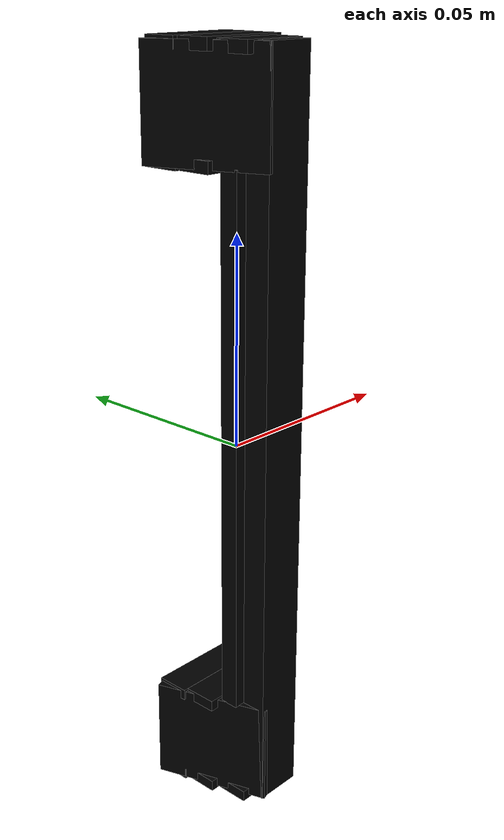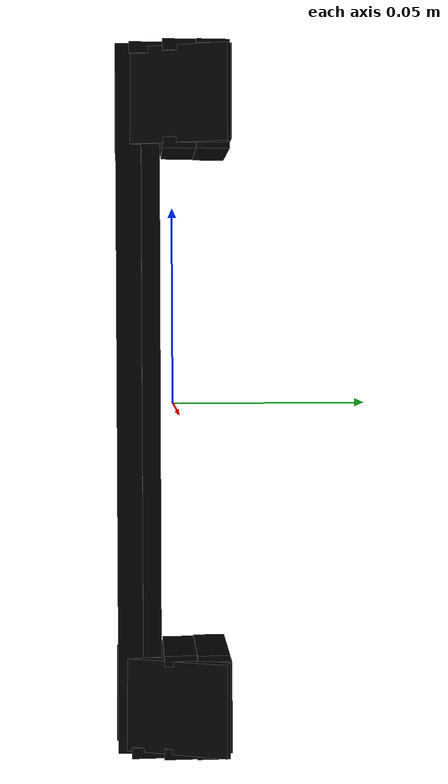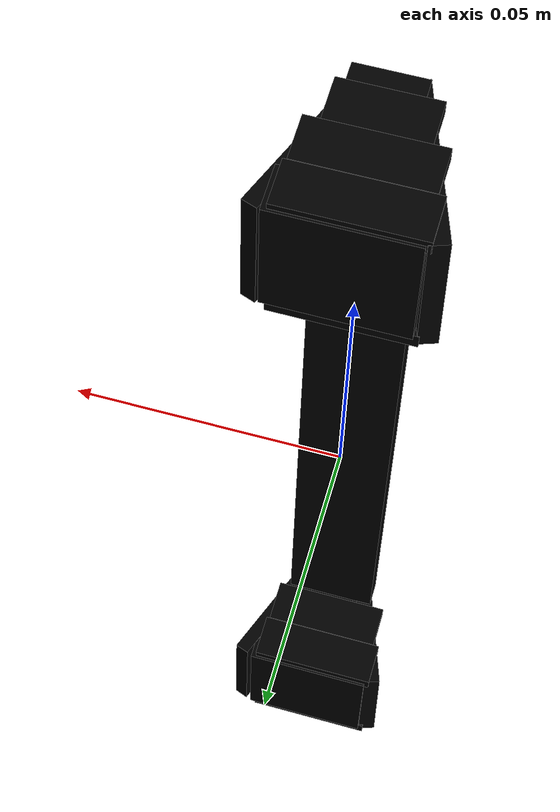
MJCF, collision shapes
<?xml version="1.0" ?>
<mujoco model="model">
    <compiler angle="radian"/>
    <asset>
        <mesh file="visuals/CabinetHandle007.obj" name="mesh"/>
        <texture file="visuals/T_BC001.png" name="tex" type="2d"/>
        <material name="mat" rgba="1 1 1 1.0" texture="tex" shininess="-1023.0" specular="0.7"/>
    </asset>
    <default>
        <default class="visual">
            <geom conaffinity="0" contype="0" group="1" type="mesh"/>
        </default>
        <default class="collision">
            <geom group="0" rgba="0 0 0 0"/>
        </default>
        <default class="spawn">
            <geom group="0" rgba="0 0 0 0" contype="0" conaffinity="0"/>
            <site group="0" rgba="0 0 0 0"/>
        </default>
    </default>
    <worldbody>
        <body>
            <body name="object">
                <geom mesh="mesh" type="mesh" solimp="0.998 0.998 0.001" solref="0.001 1" density="100" friction="0.95 0.3 0.1" class="visual" material="mat"/>
                <geom class="collision" type="box" pos="-1.2904575075560092e-17 -0.005636577494442463 0.0005245916545391083" size="0.008549423888325691 0.0023297362495213747 0.06482824683189392" quat="1.0 0.0 0.0 0.0"/>
                <geom class="collision" type="box" pos="0.00017494807252660394 -0.008284534327685833 0.07754124701023102" size="0.0051120370626449585 0.005095829255878925 0.00515037402510643" quat="1.0 0.0 0.0 0.0"/>
                <geom class="collision" type="box" pos="-0.009028749540448189 -0.0002413343172520399 0.07756569981575012" size="0.001668220036663115 0.014624437317252159 0.012772087007761002" quat="0.9861031174659729 -0.0031931994017213583 0.006876656785607338 0.1659613400697708"/>
                <geom class="collision" type="box" pos="-0.00074393191607669 0.00990535318851471 0.08959698677062988" size="0.011971785686910152 0.004150500055402517 0.0013836831785738468" quat="1.0 0.0 0.0 0.0"/>
                <geom class="collision" type="box" pos="-0.0004695872776210308 0.0015378405805677176 0.08959698677062988" size="0.011065902188420296 0.004150512628257275 0.0013836827129125595" quat="1.0 0.0 0.0 0.0"/>
                <geom class="collision" type="box" pos="0.008942185901105404 0.00041964324191212654 0.07754197716712952" size="0.014151065610349178 0.0013836766593158245 0.011971814557909966" quat="0.5701012015342712 0.000959118187893182 -0.0013821853790432215 -0.8215727806091309"/>
                <geom class="collision" type="box" pos="-0.0004060814098920673 -0.006717899348586798 0.08927058428525925" size="0.008338549174368382 0.004150512628257275 0.0013836811995133758" quat="1.0 0.0 0.0 0.0"/>
                <geom class="collision" type="box" pos="0.00025179923977702856 -0.01112931128591299 0.0003820057027041912" size="0.006054001860320568 0.003203393891453743 0.09008876979351044" quat="1.0 0.0 0.0 0.0"/>
                <geom class="collision" type="box" pos="-0.00854166317731142 -0.0004233064828440547 -0.07696889340877533" size="0.001668220036663115 0.014624437317252159 0.012772087007761002" quat="0.9861031174659729 -0.0031931994017213583 0.006876656785607338 0.1659613400697708"/>
                <geom class="collision" type="box" pos="0.009429272264242172 0.00023767119273543358 -0.07699261605739594" size="0.014151065610349178 0.0013836766593158245 0.011971814557909966" quat="0.5701012015342712 0.000959118187893182 -0.0013821853790432215 -0.8215727806091309"/>
                <geom class="collision" type="box" pos="-0.0007439185865223408 0.009905352257192135 0.06552545726299286" size="0.011971795931458473 0.00415050471201539 0.0013836831785738468" quat="1.0 0.0 0.0 0.0"/>
                <geom class="collision" type="box" pos="-0.0004695739771705121 0.001537839649245143 0.06552545726299286" size="0.011065922677516937 0.004150512628257275 0.0013836827129125595" quat="1.0 0.0 0.0 0.0"/>
                <geom class="collision" type="box" pos="-0.0007438465254381299 0.009905345737934113 -0.06497131288051605" size="0.011971801519393921 0.004150507505983114 0.0013836831785738468" quat="1.0 0.0 0.0 0.0"/>
                <geom class="collision" type="box" pos="-0.00046950188698247075 0.0015378340613096952 -0.06497131288051605" size="0.011065932922065258 0.004150512628257275 0.0013836827129125595" quat="1.0 0.0 0.0 0.0"/>
                <geom class="collision" type="box" pos="-0.0007438333122991025 0.009905344806611538 -0.08895181119441986" size="0.011971806176006794 0.0041505093686282635 0.0013836831785738468" quat="1.0 0.0 0.0 0.0"/>
                <geom class="collision" type="box" pos="-0.00046948864473961294 0.0015378326643258333 -0.08895181119441986" size="0.011065943166613579 0.004150512628257275 0.0013836827129125595" quat="1.0 0.0 0.0 0.0"/>
                <geom class="collision" type="box" pos="-0.00040598277701064944 -0.006717907264828682 -0.0892782136797905" size="0.008338549174368382 0.004150512628257275 0.0013836811995133758" quat="1.0 0.0 0.0 0.0"/>
                <geom class="collision" type="box" pos="0.00015374599024653435 0.010357148945331573 0.07818981260061264" size="0.011971799656748772 0.004150504246354103 0.011668529361486435" quat="1.0 0.0 0.0 0.0" name="handle_connector"/>
                <geom class="collision" type="box" pos="0.00015374599024653435 0.010357148945331573 -0.07686231285333633" size="0.011971797794103622 0.004150504246354103 0.011668529361486435" quat="1.0 0.0 0.0 0.0"/>
            </body>
        </body>
    </worldbody>
    <actuator/>
</mujoco>
